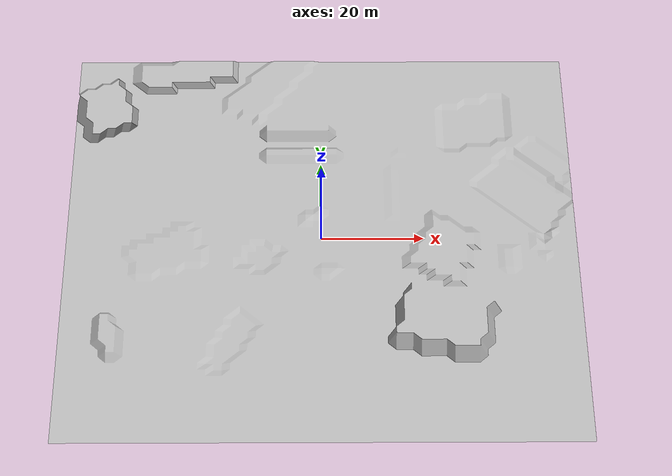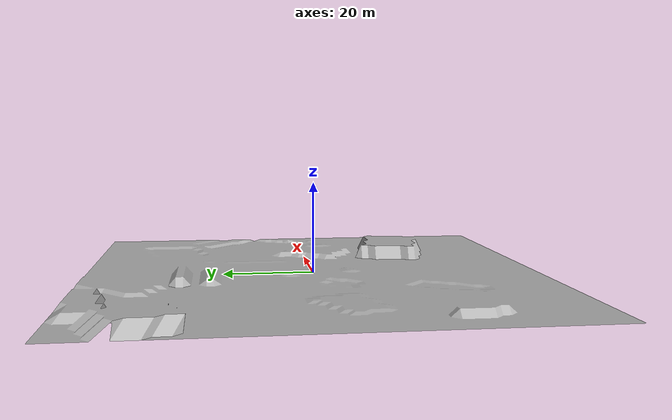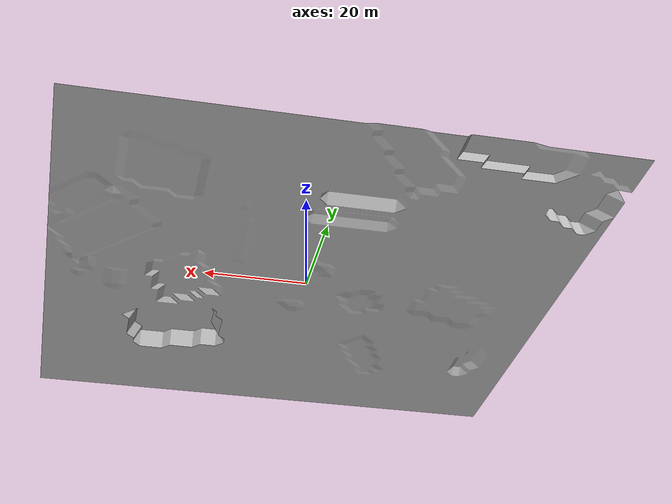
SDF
<?xml version="1.0"?>
<sdf version="1.8">
  <model name="desert">
    <static>true</static>
    <link name="main_link">
      <collision name="plane_collision">
        <geometry>
          <mesh>
            <uri>model://desert/meshes/desert.dae</uri>
          </mesh>
        </geometry>
      </collision>
      <visual name="plane_visual">
        <geometry>
          <mesh>
            <uri>model://desert/meshes/desert.dae</uri>
          </mesh>
        </geometry>
        <material>
          <script>
            <uri>model://desert/materials/scripts</uri>
            <uri>model://desert/materials/textures</uri>
            <name>Desert/Material</name>
          </script>
        </material>
      </visual>
    </link>
  </model>
</sdf>
